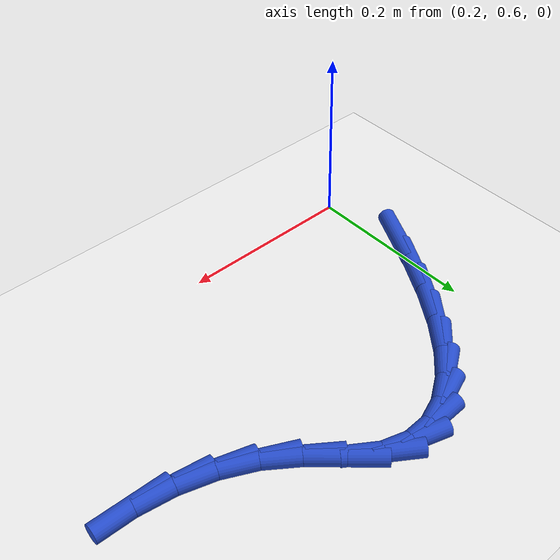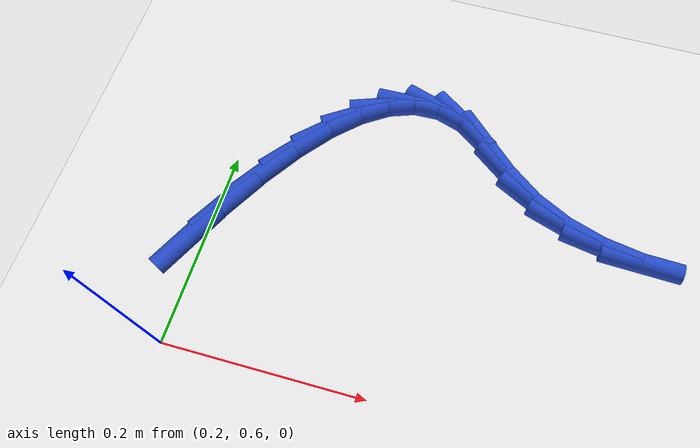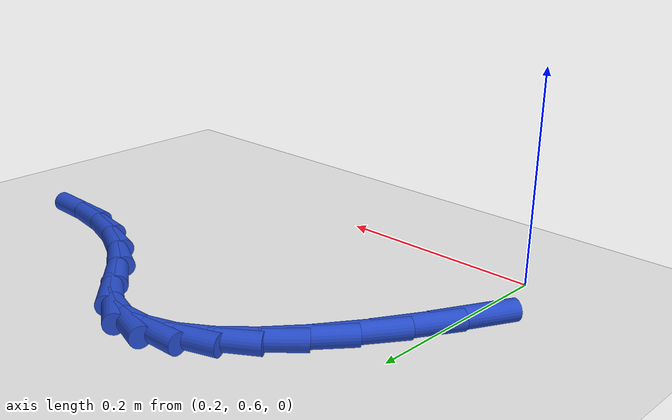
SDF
<sdf version="1.6">
 <world name="default">
  <model name="ground_plane">
   <static>1</static>
   <link name="link">
    <collision name="collision">
     <geometry><plane><normal>0 0 1</normal><size>100 100</size></plane></geometry>
     <surface><friction><ode><mu>100</mu><mu2>50</mu2></ode></friction></surface>
    </collision>
    <visual name="visual">
     <cast_shadows>0</cast_shadows>
     <geometry><plane><normal>0 0 1</normal><size>100 100</size></plane></geometry>
     <material>
      <script><uri>file://media/materials/scripts/gazebo.material</uri><name>Gazebo/WhiteGlow</name></script>
     </material>
    </visual>
   </link>
  </model>
  <model name="line">
   <link name="link_16">
    <pose>0.1877204374348183 0.7022561491457324 0.01 0 1.57 1.1065168290132088</pose>
    <collision name="collision">
     <geometry><cylinder><radius>0.01</radius><length>0.08</length></cylinder></geometry>
    </collision>
    <visual name="visual">
     <material>
      <script><name>Gazebo/Blue</name><uri>file://media/materials/scripts/gazebo.material</uri></script>
     </material>
     <geometry><cylinder><radius>0.01</radius><length>0.08</length></cylinder></geometry>
    </visual>
   </link>
   <link name="link_17">
    <pose>0.21012250446299505 0.7469895944534137 0.01 0 1.57 1.0533028723605897</pose>
    <collision name="collision">
     <geometry><cylinder><radius>0.01</radius><length>0.08</length></cylinder></geometry>
    </collision>
    <visual name="visual">
     <material>
      <script><name>Gazebo/Blue</name><uri>file://media/materials/scripts/gazebo.material</uri></script>
     </material>
     <geometry><cylinder><radius>0.01</radius><length>0.08</length></cylinder></geometry>
    </visual>
   </link>
   <link name="link_18">
    <pose>0.23340477179342742 0.7878903313492277 0.01 0 1.57 0.9842439488143678</pose>
    <collision name="collision">
     <geometry><cylinder><radius>0.01</radius><length>0.08</length></cylinder></geometry>
    </collision>
    <visual name="visual">
     <material>
      <script><name>Gazebo/Blue</name><uri>file://media/materials/scripts/gazebo.material</uri></script>
     </material>
     <geometry><cylinder><radius>0.01</radius><length>0.08</length></cylinder></geometry>
    </visual>
   </link>
   <link name="link_19">
    <pose>0.25749774331363895 0.8241435920609707 0.01 0 1.57 0.8920804210931597</pose>
    <collision name="collision">
     <geometry><cylinder><radius>0.01</radius><length>0.08</length></cylinder></geometry>
    </collision>
    <visual name="visual">
     <material>
      <script><name>Gazebo/Blue</name><uri>file://media/materials/scripts/gazebo.material</uri></script>
     </material>
     <geometry><cylinder><radius>0.01</radius><length>0.08</length></cylinder></geometry>
    </visual>
   </link>
   <link name="link_20">
    <pose>0.28233192291115317 0.8549346088164385 0.01 0 1.57 0.7655709221809681</pose>
    <collision name="collision">
     <geometry><cylinder><radius>0.01</radius><length>0.08</length></cylinder></geometry>
    </collision>
    <visual name="visual">
     <material>
      <script><name>Gazebo/Blue</name><uri>file://media/materials/scripts/gazebo.material</uri></script>
     </material>
     <geometry><cylinder><radius>0.01</radius><length>0.08</length></cylinder></geometry>
    </visual>
   </link>
   <link name="link_21">
    <pose>0.307837814473494 0.8794486138434283 0.01 0 1.57 0.5884485016935522</pose>
    <collision name="collision">
     <geometry><cylinder><radius>0.01</radius><length>0.08</length></cylinder></geometry>
    </collision>
    <visual name="visual">
     <material>
      <script><name>Gazebo/Blue</name><uri>file://media/materials/scripts/gazebo.material</uri></script>
     </material>
     <geometry><cylinder><radius>0.01</radius><length>0.08</length></cylinder></geometry>
    </visual>
   </link>
   <link name="link_22">
    <pose>0.33394592188818484 0.8968708393697358 0.01 0 1.57 0.34306046348840885</pose>
    <collision name="collision">
     <geometry><cylinder><radius>0.01</radius><length>0.08</length></cylinder></geometry>
    </collision>
    <visual name="visual">
     <material>
      <script><name>Gazebo/Blue</name><uri>file://media/materials/scripts/gazebo.material</uri></script>
     </material>
     <geometry><cylinder><radius>0.01</radius><length>0.08</length></cylinder></geometry>
    </visual>
   </link>
   <link name="link_23">
    <pose>0.36058674904274945 0.9063865176231579 0.01 0 1.57 0.02929952763949501</pose>
    <collision name="collision">
     <geometry><cylinder><radius>0.01</radius><length>0.08</length></cylinder></geometry>
    </collision>
    <visual name="visual">
     <material>
      <script><name>Gazebo/Blue</name><uri>file://media/materials/scripts/gazebo.material</uri></script>
     </material>
     <geometry><cylinder><radius>0.01</radius><length>0.08</length></cylinder></geometry>
    </visual>
   </link>
   <link name="link_24">
    <pose>0.38769079982471155 0.9071808808314907 0.01 0 1.57 -0.30780265959698605</pose>
    <collision name="collision">
     <geometry><cylinder><radius>0.01</radius><length>0.08</length></cylinder></geometry>
    </collision>
    <visual name="visual">
     <material>
      <script><name>Gazebo/Blue</name><uri>file://media/materials/scripts/gazebo.material</uri></script>
     </material>
     <geometry><cylinder><radius>0.01</radius><length>0.08</length></cylinder></geometry>
    </visual>
   </link>
   <link name="link_25">
    <pose>0.4151885781215945 0.8984391612225302 0.01 0 1.57 -0.601246775000382</pose>
    <collision name="collision">
     <geometry><cylinder><radius>0.01</radius><length>0.08</length></cylinder></geometry>
    </collision>
    <visual name="visual">
     <material>
      <script><name>Gazebo/Blue</name><uri>file://media/materials/scripts/gazebo.material</uri></script>
     </material>
     <geometry><cylinder><radius>0.01</radius><length>0.08</length></cylinder></geometry>
    </visual>
   </link>
   <link name="link_26">
    <pose>0.4430119001629754 0.8793532334128125 0.01 0 1.57 -0.7452722203826176</pose>
    <collision name="collision">
     <geometry><cylinder><radius>0.01</radius><length>0.08</length></cylinder></geometry>
    </collision>
    <visual name="visual">
     <material>
      <script><name>Gazebo/Blue</name><uri>file://media/materials/scripts/gazebo.material</uri></script>
     </material>
     <geometry><cylinder><radius>0.01</radius><length>0.08</length></cylinder></geometry>
    </visual>
   </link>
   <link name="link_27">
    <pose>0.47181535726868373 0.8527732813059352 0.01 0 1.57 -0.6346864906345117</pose>
    <collision name="collision">
     <geometry><cylinder><radius>0.01</radius><length>0.08</length></cylinder></geometry>
    </collision>
    <visual name="visual">
     <material>
      <script><name>Gazebo/Blue</name><uri>file://media/materials/scripts/gazebo.material</uri></script>
     </material>
     <geometry><cylinder><radius>0.01</radius><length>0.08</length></cylinder></geometry>
    </visual>
   </link>
   <link name="link_28">
    <pose>0.5036969247259705 0.8292983328843618 0.01 0 1.57 -0.4669300043281286</pose>
    <collision name="collision">
     <geometry><cylinder><radius>0.01</radius><length>0.08</length></cylinder></geometry>
    </collision>
    <visual name="visual">
     <material>
      <script><name>Gazebo/Blue</name><uri>file://media/materials/scripts/gazebo.material</uri></script>
     </material>
     <geometry><cylinder><radius>0.01</radius><length>0.08</length></cylinder></geometry>
    </visual>
   </link>
   <link name="link_29">
    <pose>0.5387693777937349 0.8116179672019037 0.01 0 1.57 -0.30972719676801136</pose>
    <collision name="collision">
     <geometry><cylinder><radius>0.01</radius><length>0.08</length></cylinder></geometry>
    </collision>
    <visual name="visual">
     <material>
      <script><name>Gazebo/Blue</name><uri>file://media/materials/scripts/gazebo.material</uri></script>
     </material>
     <geometry><cylinder><radius>0.01</radius><length>0.08</length></cylinder></geometry>
    </visual>
   </link>
   <link name="link_30">
    <pose>0.576452486745119 0.7995583648470999 0.01 0 1.57 -0.16501000302837293</pose>
    <collision name="collision">
     <geometry><cylinder><radius>0.01</radius><length>0.08</length></cylinder></geometry>
    </collision>
    <visual name="visual">
     <material>
      <script><name>Gazebo/Blue</name><uri>file://media/materials/scripts/gazebo.material</uri></script>
     </material>
     <geometry><cylinder><radius>0.01</radius><length>0.08</length></cylinder></geometry>
    </visual>
   </link>
   <link name="link_31">
    <pose>0.616165881339732 0.7929451258264658 0.01 0 1.57 -0.03257272774613214</pose>
    <collision name="collision">
     <geometry><cylinder><radius>0.01</radius><length>0.08</length></cylinder></geometry>
    </collision>
    <visual name="visual">
     <material>
      <script><name>Gazebo/Blue</name><uri>file://media/materials/scripts/gazebo.material</uri></script>
     </material>
     <geometry><cylinder><radius>0.01</radius><length>0.08</length></cylinder></geometry>
    </visual>
   </link>
  </model>
 </world>
</sdf>
